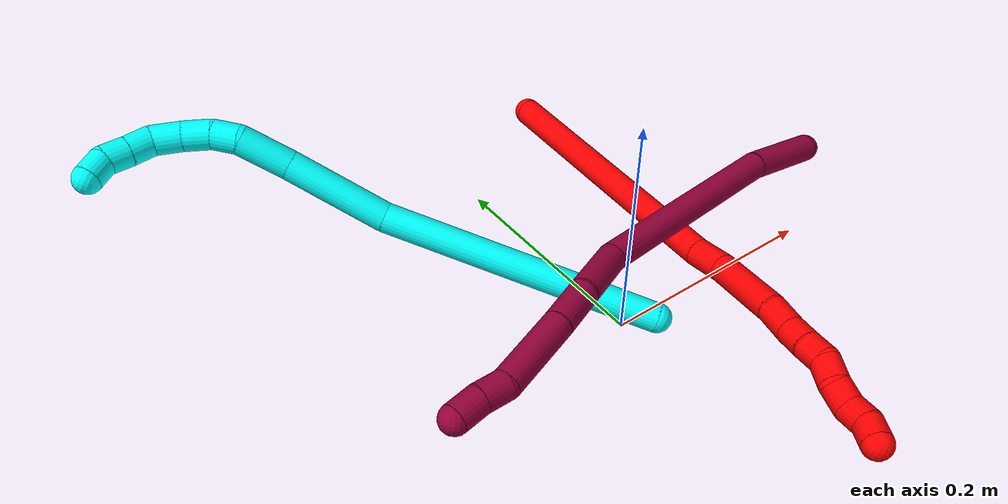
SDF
<sdf version="1.7">
 <world name="default">
  <model name="2">
   <static>0</static>
   <link name="2">
    <collision name="collision-cylinder-e_1_1_4">
     <pose>-0.024738 -0.073642 -0.098688 2.50052 -0.198258 -0.58214</pose>
     <geometry><cylinder><radius>0.0125</radius><length>0.251193</length></cylinder></geometry>
     <surface>
      <friction><ode><mu>1.16</mu><mu2>1.16</mu2><slip1>0</slip1><slip2>0</slip2></ode></friction>
      <contact><ode><kp>1e+06</kp><kd>1</kd><max_vel>0</max_vel><min_depth>0.001</min_depth></ode></contact>
     </surface>
    </collision>
    <visual name="visual-cylinder-e_1_1_4">
     <pose>-0.024738 -0.073642 -0.098688 2.50052 -0.198258 -0.58214</pose>
     <geometry><cylinder><radius>0.0125</radius><length>0.251193</length></cylinder></geometry>
     <material><ambient>1 0 0 1</ambient></material>
    </visual>
    <collision name="collision-cylinder-e_2_4_5">
     <pose>-0.050624 -0.157809 -0.208819 2.39795 -0.073718 -0.188564</pose>
     <geometry><cylinder><radius>0.0125</radius><length>0.031178</length></cylinder></geometry>
     <surface>
      <friction><ode><mu>1.16</mu><mu2>1.16</mu2><slip1>0</slip1><slip2>0</slip2></ode></friction>
      <contact><ode><kp>1e+06</kp><kd>1</kd><max_vel>0</max_vel><min_depth>0.001</min_depth></ode></contact>
     </surface>
    </collision>
    <visual name="visual-cylinder-e_2_4_5">
     <pose>-0.050624 -0.157809 -0.208819 2.39795 -0.073718 -0.188564</pose>
     <geometry><cylinder><radius>0.0125</radius><length>0.031178</length></cylinder></geometry>
     <material><ambient>1 0 0 1</ambient></material>
    </visual>
    <collision name="collision-cylinder-e_3_5_6">
     <pose>-0.056963 -0.19606 -0.241227 2.21824 -0.148247 -0.29632</pose>
     <geometry><cylinder><radius>0.0125</radius><length>0.070293</length></cylinder></geometry>
     <surface>
      <friction><ode><mu>1.16</mu><mu2>1.16</mu2><slip1>0</slip1><slip2>0</slip2></ode></friction>
      <contact><ode><kp>1e+06</kp><kd>1</kd><max_vel>0</max_vel><min_depth>0.001</min_depth></ode></contact>
     </surface>
    </collision>
    <visual name="visual-cylinder-e_3_5_6">
     <pose>-0.056963 -0.19606 -0.241227 2.21824 -0.148247 -0.29632</pose>
     <geometry><cylinder><radius>0.0125</radius><length>0.070293</length></cylinder></geometry>
     <material><ambient>1 0 0 1</ambient></material>
    </visual>
    <collision name="collision-cylinder-e_4_6_7">
     <pose>-0.066007 -0.233097 -0.270726 2.31264 -0.296072 -0.653595</pose>
     <geometry><cylinder><radius>0.0125</radius><length>0.026408</length></cylinder></geometry>
     <surface>
      <friction><ode><mu>1.16</mu><mu2>1.16</mu2><slip1>0</slip1><slip2>0</slip2></ode></friction>
      <contact><ode><kp>1e+06</kp><kd>1</kd><max_vel>0</max_vel><min_depth>0.001</min_depth></ode></contact>
     </surface>
    </collision>
    <visual name="visual-cylinder-e_4_6_7">
     <pose>-0.066007 -0.233097 -0.270726 2.31264 -0.296072 -0.653595</pose>
     <geometry><cylinder><radius>0.0125</radius><length>0.026408</length></cylinder></geometry>
     <material><ambient>1 0 0 1</ambient></material>
    </visual>
    <collision name="collision-cylinder-e_5_7_8">
     <pose>-0.072007 -0.250317 -0.285723 2.25597 -0.207259 -0.43179</pose>
     <geometry><cylinder><radius>0.0125</radius><length>0.020876</length></cylinder></geometry>
     <surface>
      <friction><ode><mu>1.16</mu><mu2>1.16</mu2><slip1>0</slip1><slip2>0</slip2></ode></friction>
      <contact><ode><kp>1e+06</kp><kd>1</kd><max_vel>0</max_vel><min_depth>0.001</min_depth></ode></contact>
     </surface>
    </collision>
    <visual name="visual-cylinder-e_5_7_8">
     <pose>-0.072007 -0.250317 -0.285723 2.25597 -0.207259 -0.43179</pose>
     <geometry><cylinder><radius>0.0125</radius><length>0.020876</length></cylinder></geometry>
     <material><ambient>1 0 0 1</ambient></material>
    </visual>
    <collision name="collision-cylinder-e_6_8_9">
     <pose>-0.076047 -0.265207 -0.299129 2.3534 -0.189829 -0.450102</pose>
     <geometry><cylinder><radius>0.0125</radius><length>0.02005</length></cylinder></geometry>
     <surface>
      <friction><ode><mu>1.16</mu><mu2>1.16</mu2><slip1>0</slip1><slip2>0</slip2></ode></friction>
      <contact><ode><kp>1e+06</kp><kd>1</kd><max_vel>0</max_vel><min_depth>0.001</min_depth></ode></contact>
     </surface>
    </collision>
    <visual name="visual-cylinder-e_6_8_9">
     <pose>-0.076047 -0.265207 -0.299129 2.3534 -0.189829 -0.450102</pose>
     <geometry><cylinder><radius>0.0125</radius><length>0.02005</length></cylinder></geometry>
     <material><ambient>1 0 0 1</ambient></material>
    </visual>
    <collision name="collision-cylinder-e_7_9_10">
     <pose>-0.083623 -0.278379 -0.31149 2.28982 -0.604622 -1.20452</pose>
     <geometry><cylinder><radius>0.0125</radius><length>0.02</length></cylinder></geometry>
     <surface>
      <friction><ode><mu>1.16</mu><mu2>1.16</mu2><slip1>0</slip1><slip2>0</slip2></ode></friction>
      <contact><ode><kp>1e+06</kp><kd>1</kd><max_vel>0</max_vel><min_depth>0.001</min_depth></ode></contact>
     </surface>
    </collision>
    <visual name="visual-cylinder-e_7_9_10">
     <pose>-0.083623 -0.278379 -0.31149 2.28982 -0.604622 -1.20452</pose>
     <geometry><cylinder><radius>0.0125</radius><length>0.02</length></cylinder></geometry>
     <material><ambient>1 0 0 1</ambient></material>
    </visual>
    <collision name="collision-cylinder-e_8_10_11">
     <pose>-0.094587 -0.288203 -0.324585 2.69953 -0.556147 -1.8079</pose>
     <geometry><cylinder><radius>0.0125</radius><length>0.02</length></cylinder></geometry>
     <surface>
      <friction><ode><mu>1.16</mu><mu2>1.16</mu2><slip1>0</slip1><slip2>0</slip2></ode></friction>
      <contact><ode><kp>1e+06</kp><kd>1</kd><max_vel>0</max_vel><min_depth>0.001</min_depth></ode></contact>
     </surface>
    </collision>
    <visual name="visual-cylinder-e_8_10_11">
     <pose>-0.094587 -0.288203 -0.324585 2.69953 -0.556147 -1.8079</pose>
     <geometry><cylinder><radius>0.0125</radius><length>0.02</length></cylinder></geometry>
     <material><ambient>1 0 0 1</ambient></material>
    </visual>
    <collision name="collision-cylinder-e_9_11_12">
     <pose>-0.101597 -0.299079 -0.338936 2.31534 -0.173984 -0.392779</pose>
     <geometry><cylinder><radius>0.0125</radius><length>0.020001</length></cylinder></geometry>
     <surface>
      <friction><ode><mu>1.16</mu><mu2>1.16</mu2><slip1>0</slip1><slip2>0</slip2></ode></friction>
      <contact><ode><kp>1e+06</kp><kd>1</kd><max_vel>0</max_vel><min_depth>0.001</min_depth></ode></contact>
     </surface>
    </collision>
    <visual name="visual-cylinder-e_9_11_12">
     <pose>-0.101597 -0.299079 -0.338936 2.31534 -0.173984 -0.392779</pose>
     <geometry><cylinder><radius>0.0125</radius><length>0.020001</length></cylinder></geometry>
     <material><ambient>1 0 0 1</ambient></material>
    </visual>
    <collision name="collision-cylinder-e_10_12_2">
     <pose>-0.107525 -0.314514 -0.349521 2.01616 -0.433088 -0.67119</pose>
     <geometry><cylinder><radius>0.0125</radius><length>0.02</length></cylinder></geometry>
     <surface>
      <friction><ode><mu>1.16</mu><mu2>1.16</mu2><slip1>0</slip1><slip2>0</slip2></ode></friction>
      <contact><ode><kp>1e+06</kp><kd>1</kd><max_vel>0</max_vel><min_depth>0.001</min_depth></ode></contact>
     </surface>
    </collision>
    <visual name="visual-cylinder-e_10_12_2">
     <pose>-0.107525 -0.314514 -0.349521 2.01616 -0.433088 -0.67119</pose>
     <geometry><cylinder><radius>0.0125</radius><length>0.02</length></cylinder></geometry>
     <material><ambient>1 0 0 1</ambient></material>
    </visual>
    <collision name="collision-sphere-2">
     <pose>-0.111722 -0.322706 -0.353431 0 -0 0</pose>
     <geometry><sphere><radius>0.0125</radius></sphere></geometry>
     <surface>
      <friction><ode><mu>1.16</mu><mu2>1.16</mu2><slip1>0</slip1><slip2>0</slip2></ode></friction>
      <contact><ode><kp>1e+06</kp><kd>1</kd><max_vel>0</max_vel><min_depth>0.001</min_depth></ode></contact>
     </surface>
    </collision>
    <visual name="visual-sphere-2">
     <pose>-0.111722 -0.322706 -0.353431 0 -0 0</pose>
     <geometry><sphere><radius>0.0125</radius></sphere></geometry>
     <material><ambient>1 0 0 1</ambient></material>
    </visual>
    <collision name="collision-sphere-12">
     <pose>-0.103328 -0.306323 -0.345611 0 -0 0</pose>
     <geometry><sphere><radius>0.0125</radius></sphere></geometry>
     <surface>
      <friction><ode><mu>1.16</mu><mu2>1.16</mu2><slip1>0</slip1><slip2>0</slip2></ode></friction>
      <contact><ode><kp>1e+06</kp><kd>1</kd><max_vel>0</max_vel><min_depth>0.001</min_depth></ode></contact>
     </surface>
    </collision>
    <visual name="visual-sphere-12">
     <pose>-0.103328 -0.306323 -0.345611 0 -0 0</pose>
     <geometry><sphere><radius>0.0125</radius></sphere></geometry>
     <material><ambient>1 0 0 1</ambient></material>
    </visual>
    <collision name="collision-sphere-11">
     <pose>-0.099866 -0.291836 -0.332262 0 -0 0</pose>
     <geometry><sphere><radius>0.0125</radius></sphere></geometry>
     <surface>
      <friction><ode><mu>1.16</mu><mu2>1.16</mu2><slip1>0</slip1><slip2>0</slip2></ode></friction>
      <contact><ode><kp>1e+06</kp><kd>1</kd><max_vel>0</max_vel><min_depth>0.001</min_depth></ode></contact>
     </surface>
    </collision>
    <visual name="visual-sphere-11">
     <pose>-0.099866 -0.291836 -0.332262 0 -0 0</pose>
     <geometry><sphere><radius>0.0125</radius></sphere></geometry>
     <material><ambient>1 0 0 1</ambient></material>
    </visual>
    <collision name="collision-sphere-10">
     <pose>-0.089308 -0.284569 -0.316909 0 -0 0</pose>
     <geometry><sphere><radius>0.0125</radius></sphere></geometry>
     <surface>
      <friction><ode><mu>1.16</mu><mu2>1.16</mu2><slip1>0</slip1><slip2>0</slip2></ode></friction>
      <contact><ode><kp>1e+06</kp><kd>1</kd><max_vel>0</max_vel><min_depth>0.001</min_depth></ode></contact>
     </surface>
    </collision>
    <visual name="visual-sphere-10">
     <pose>-0.089308 -0.284569 -0.316909 0 -0 0</pose>
     <geometry><sphere><radius>0.0125</radius></sphere></geometry>
     <material><ambient>1 0 0 1</ambient></material>
    </visual>
    <collision name="collision-sphere-9">
     <pose>-0.077938 -0.272188 -0.306071 0 -0 0</pose>
     <geometry><sphere><radius>0.0125</radius></sphere></geometry>
     <surface>
      <friction><ode><mu>1.16</mu><mu2>1.16</mu2><slip1>0</slip1><slip2>0</slip2></ode></friction>
      <contact><ode><kp>1e+06</kp><kd>1</kd><max_vel>0</max_vel><min_depth>0.001</min_depth></ode></contact>
     </surface>
    </collision>
    <visual name="visual-sphere-9">
     <pose>-0.077938 -0.272188 -0.306071 0 -0 0</pose>
     <geometry><sphere><radius>0.0125</radius></sphere></geometry>
     <material><ambient>1 0 0 1</ambient></material>
    </visual>
    <collision name="collision-sphere-4">
     <pose>-0.049475 -0.147284 -0.197376 0 -0 0</pose>
     <geometry><sphere><radius>0.0125</radius></sphere></geometry>
     <surface>
      <friction><ode><mu>1.16</mu><mu2>1.16</mu2><slip1>0</slip1><slip2>0</slip2></ode></friction>
      <contact><ode><kp>1e+06</kp><kd>1</kd><max_vel>0</max_vel><min_depth>0.001</min_depth></ode></contact>
     </surface>
    </collision>
    <visual name="visual-sphere-4">
     <pose>-0.049475 -0.147284 -0.197376 0 -0 0</pose>
     <geometry><sphere><radius>0.0125</radius></sphere></geometry>
     <material><ambient>1 0 0 1</ambient></material>
    </visual>
    <collision name="collision-sphere-1">
     <geometry><sphere><radius>0.0125</radius></sphere></geometry>
     <surface>
      <friction><ode><mu>1.16</mu><mu2>1.16</mu2><slip1>0</slip1><slip2>0</slip2></ode></friction>
      <contact><ode><kp>1e+06</kp><kd>1</kd><max_vel>0</max_vel><min_depth>0.001</min_depth></ode></contact>
     </surface>
    </collision>
    <visual name="visual-sphere-1">
     <geometry><sphere><radius>0.0125</radius></sphere></geometry>
     <material><ambient>1 0 0 1</ambient></material>
    </visual>
    <collision name="collision-sphere-8">
     <pose>-0.074155 -0.258226 -0.292187 0 -0 0</pose>
     <geometry><sphere><radius>0.0125</radius></sphere></geometry>
     <surface>
      <friction><ode><mu>1.16</mu><mu2>1.16</mu2><slip1>0</slip1><slip2>0</slip2></ode></friction>
      <contact><ode><kp>1e+06</kp><kd>1</kd><max_vel>0</max_vel><min_depth>0.001</min_depth></ode></contact>
     </surface>
    </collision>
    <visual name="visual-sphere-8">
     <pose>-0.074155 -0.258226 -0.292187 0 -0 0</pose>
     <geometry><sphere><radius>0.0125</radius></sphere></geometry>
     <material><ambient>1 0 0 1</ambient></material>
    </visual>
    <collision name="collision-sphere-5">
     <pose>-0.051772 -0.168334 -0.220261 0 -0 0</pose>
     <geometry><sphere><radius>0.0125</radius></sphere></geometry>
     <surface>
      <friction><ode><mu>1.16</mu><mu2>1.16</mu2><slip1>0</slip1><slip2>0</slip2></ode></friction>
      <contact><ode><kp>1e+06</kp><kd>1</kd><max_vel>0</max_vel><min_depth>0.001</min_depth></ode></contact>
     </surface>
    </collision>
    <visual name="visual-sphere-5">
     <pose>-0.051772 -0.168334 -0.220261 0 -0 0</pose>
     <geometry><sphere><radius>0.0125</radius></sphere></geometry>
     <material><ambient>1 0 0 1</ambient></material>
    </visual>
    <collision name="collision-sphere-6">
     <pose>-0.062154 -0.223786 -0.262193 0 -0 0</pose>
     <geometry><sphere><radius>0.0125</radius></sphere></geometry>
     <surface>
      <friction><ode><mu>1.16</mu><mu2>1.16</mu2><slip1>0</slip1><slip2>0</slip2></ode></friction>
      <contact><ode><kp>1e+06</kp><kd>1</kd><max_vel>0</max_vel><min_depth>0.001</min_depth></ode></contact>
     </surface>
    </collision>
    <visual name="visual-sphere-6">
     <pose>-0.062154 -0.223786 -0.262193 0 -0 0</pose>
     <geometry><sphere><radius>0.0125</radius></sphere></geometry>
     <material><ambient>1 0 0 1</ambient></material>
    </visual>
    <collision name="collision-sphere-7">
     <pose>-0.069859 -0.242408 -0.279259 0 -0 0</pose>
     <geometry><sphere><radius>0.0125</radius></sphere></geometry>
     <surface>
      <friction><ode><mu>1.16</mu><mu2>1.16</mu2><slip1>0</slip1><slip2>0</slip2></ode></friction>
      <contact><ode><kp>1e+06</kp><kd>1</kd><max_vel>0</max_vel><min_depth>0.001</min_depth></ode></contact>
     </surface>
    </collision>
    <visual name="visual-sphere-7">
     <pose>-0.069859 -0.242408 -0.279259 0 -0 0</pose>
     <geometry><sphere><radius>0.0125</radius></sphere></geometry>
     <material><ambient>1 0 0 1</ambient></material>
    </visual>
    <inertial>
     <pose>-0.048629 -0.155006 -0.18772 0 -0 0</pose>
     <mass>0.5</mass>
     <inertia>
      <ixx>0.000388</ixx>
      <ixy>0</ixy>
      <ixz>0</ixz>
      <iyy>-0.001586</iyy>
      <iyz>0</iyz>
      <izz>0.001059</izz>
     </inertia>
    </inertial>
   </link>
   <pose>0.112085 0.269203 0.011496 -1.16426 -0.836048 0.266186</pose>
  </model>
  <model name="3">
   <static>0</static>
   <link name="3">
    <collision name="collision-cylinder-e_1_1_4">
     <pose>-0.017079 0.0234 0.114469 -0.201642 -0.145154 0.01471</pose>
     <geometry><cylinder><radius>0.0125</radius><length>0.236157</length></cylinder></geometry>
     <surface>
      <friction><ode><mu>1.16</mu><mu2>1.16</mu2><slip1>0</slip1><slip2>0</slip2></ode></friction>
      <contact><ode><kp>1e+06</kp><kd>1</kd><max_vel>0</max_vel><min_depth>0.001</min_depth></ode></contact>
     </surface>
    </collision>
    <visual name="visual-cylinder-e_1_1_4">
     <pose>-0.017079 0.0234 0.114469 -0.201642 -0.145154 0.01471</pose>
     <geometry><cylinder><radius>0.0125</radius><length>0.236157</length></cylinder></geometry>
     <material><ambient>0.003922 1 0.996078 1</ambient></material>
    </visual>
    <collision name="collision-cylinder-e_2_4_5">
     <pose>-0.033424 0.051804 0.272352 -0.114777 0.016816 -0.000966</pose>
     <geometry><cylinder><radius>0.0125</radius><length>0.087413</length></cylinder></geometry>
     <surface>
      <friction><ode><mu>1.16</mu><mu2>1.16</mu2><slip1>0</slip1><slip2>0</slip2></ode></friction>
      <contact><ode><kp>1e+06</kp><kd>1</kd><max_vel>0</max_vel><min_depth>0.001</min_depth></ode></contact>
     </surface>
    </collision>
    <visual name="visual-cylinder-e_2_4_5">
     <pose>-0.033424 0.051804 0.272352 -0.114777 0.016816 -0.000966</pose>
     <geometry><cylinder><radius>0.0125</radius><length>0.087413</length></cylinder></geometry>
     <material><ambient>0.003922 1 0.996078 1</ambient></material>
    </visual>
    <collision name="collision-cylinder-e_3_5_6">
     <pose>-0.032742 0.057292 0.337802 -0.021902 -0.002407 2.6e-05</pose>
     <geometry><cylinder><radius>0.0125</radius><length>0.044086</length></cylinder></geometry>
     <surface>
      <friction><ode><mu>1.16</mu><mu2>1.16</mu2><slip1>0</slip1><slip2>0</slip2></ode></friction>
      <contact><ode><kp>1e+06</kp><kd>1</kd><max_vel>0</max_vel><min_depth>0.001</min_depth></ode></contact>
     </surface>
    </collision>
    <visual name="visual-cylinder-e_3_5_6">
     <pose>-0.032742 0.057292 0.337802 -0.021902 -0.002407 2.6e-05</pose>
     <geometry><cylinder><radius>0.0125</radius><length>0.044086</length></cylinder></geometry>
     <material><ambient>0.003922 1 0.996078 1</ambient></material>
    </visual>
    <collision name="collision-cylinder-e_4_6_7">
     <pose>-0.036109 0.059881 0.370119 -0.202131 -0.30588 0.031261</pose>
     <geometry><cylinder><radius>0.0125</radius><length>0.022007</length></cylinder></geometry>
     <surface>
      <friction><ode><mu>1.16</mu><mu2>1.16</mu2><slip1>0</slip1><slip2>0</slip2></ode></friction>
      <contact><ode><kp>1e+06</kp><kd>1</kd><max_vel>0</max_vel><min_depth>0.001</min_depth></ode></contact>
     </surface>
    </collision>
    <visual name="visual-cylinder-e_4_6_7">
     <pose>-0.036109 0.059881 0.370119 -0.202131 -0.30588 0.031261</pose>
     <geometry><cylinder><radius>0.0125</radius><length>0.022007</length></cylinder></geometry>
     <material><ambient>0.003922 1 0.996078 1</ambient></material>
    </visual>
    <collision name="collision-cylinder-e_5_7_8">
     <pose>-0.045673 0.063096 0.390332 -0.111113 -0.558869 0.031913</pose>
     <geometry><cylinder><radius>0.0125</radius><length>0.023579</length></cylinder></geometry>
     <surface>
      <friction><ode><mu>1.16</mu><mu2>1.16</mu2><slip1>0</slip1><slip2>0</slip2></ode></friction>
      <contact><ode><kp>1e+06</kp><kd>1</kd><max_vel>0</max_vel><min_depth>0.001</min_depth></ode></contact>
     </surface>
    </collision>
    <visual name="visual-cylinder-e_5_7_8">
     <pose>-0.045673 0.063096 0.390332 -0.111113 -0.558869 0.031913</pose>
     <geometry><cylinder><radius>0.0125</radius><length>0.023579</length></cylinder></geometry>
     <material><ambient>0.003922 1 0.996078 1</ambient></material>
    </visual>
    <collision name="collision-cylinder-e_6_8_9">
     <pose>-0.059135 0.063741 0.410355 0.045858 -0.620018 -0.014693</pose>
     <geometry><cylinder><radius>0.0125</radius><length>0.024818</length></cylinder></geometry>
     <surface>
      <friction><ode><mu>1.16</mu><mu2>1.16</mu2><slip1>0</slip1><slip2>0</slip2></ode></friction>
      <contact><ode><kp>1e+06</kp><kd>1</kd><max_vel>0</max_vel><min_depth>0.001</min_depth></ode></contact>
     </surface>
    </collision>
    <visual name="visual-cylinder-e_6_8_9">
     <pose>-0.059135 0.063741 0.410355 0.045858 -0.620018 -0.014693</pose>
     <geometry><cylinder><radius>0.0125</radius><length>0.024818</length></cylinder></geometry>
     <material><ambient>0.003922 1 0.996078 1</ambient></material>
    </visual>
    <collision name="collision-cylinder-e_7_9_10">
     <pose>-0.073759 0.058681 0.426473 0.651492 -0.774178 -0.273674</pose>
     <geometry><cylinder><radius>0.0125</radius><length>0.021209</length></cylinder></geometry>
     <surface>
      <friction><ode><mu>1.16</mu><mu2>1.16</mu2><slip1>0</slip1><slip2>0</slip2></ode></friction>
      <contact><ode><kp>1e+06</kp><kd>1</kd><max_vel>0</max_vel><min_depth>0.001</min_depth></ode></contact>
     </surface>
    </collision>
    <visual name="visual-cylinder-e_7_9_10">
     <pose>-0.073759 0.058681 0.426473 0.651492 -0.774178 -0.273674</pose>
     <geometry><cylinder><radius>0.0125</radius><length>0.021209</length></cylinder></geometry>
     <material><ambient>0.003922 1 0.996078 1</ambient></material>
    </visual>
    <collision name="collision-cylinder-e_8_10_11">
     <pose>-0.087808 0.049715 0.438685 0.615122 -0.719723 -0.237893</pose>
     <geometry><cylinder><radius>0.0125</radius><length>0.020134</length></cylinder></geometry>
     <surface>
      <friction><ode><mu>1.16</mu><mu2>1.16</mu2><slip1>0</slip1><slip2>0</slip2></ode></friction>
      <contact><ode><kp>1e+06</kp><kd>1</kd><max_vel>0</max_vel><min_depth>0.001</min_depth></ode></contact>
     </surface>
    </collision>
    <visual name="visual-cylinder-e_8_10_11">
     <pose>-0.087808 0.049715 0.438685 0.615122 -0.719723 -0.237893</pose>
     <geometry><cylinder><radius>0.0125</radius><length>0.020134</length></cylinder></geometry>
     <material><ambient>0.003922 1 0.996078 1</ambient></material>
    </visual>
    <collision name="collision-cylinder-e_9_11_2">
     <pose>-0.10205 0.038608 0.44654 1.32746 -0.830912 -0.664445</pose>
     <geometry><cylinder><radius>0.0125</radius><length>0.020597</length></cylinder></geometry>
     <surface>
      <friction><ode><mu>1.16</mu><mu2>1.16</mu2><slip1>0</slip1><slip2>0</slip2></ode></friction>
      <contact><ode><kp>1e+06</kp><kd>1</kd><max_vel>0</max_vel><min_depth>0.001</min_depth></ode></contact>
     </surface>
    </collision>
    <visual name="visual-cylinder-e_9_11_2">
     <pose>-0.10205 0.038608 0.44654 1.32746 -0.830912 -0.664445</pose>
     <geometry><cylinder><radius>0.0125</radius><length>0.020597</length></cylinder></geometry>
     <material><ambient>0.003922 1 0.996078 1</ambient></material>
    </visual>
    <collision name="collision-sphere-2">
     <pose>-0.109657 0.031869 0.448213 0 -0 0</pose>
     <geometry><sphere><radius>0.0125</radius></sphere></geometry>
     <surface>
      <friction><ode><mu>1.16</mu><mu2>1.16</mu2><slip1>0</slip1><slip2>0</slip2></ode></friction>
      <contact><ode><kp>1e+06</kp><kd>1</kd><max_vel>0</max_vel><min_depth>0.001</min_depth></ode></contact>
     </surface>
    </collision>
    <visual name="visual-sphere-2">
     <pose>-0.109657 0.031869 0.448213 0 -0 0</pose>
     <geometry><sphere><radius>0.0125</radius></sphere></geometry>
     <material><ambient>0.003922 1 0.996078 1</ambient></material>
    </visual>
    <collision name="collision-sphere-11">
     <pose>-0.094444 0.045346 0.444867 0 -0 0</pose>
     <geometry><sphere><radius>0.0125</radius></sphere></geometry>
     <surface>
      <friction><ode><mu>1.16</mu><mu2>1.16</mu2><slip1>0</slip1><slip2>0</slip2></ode></friction>
      <contact><ode><kp>1e+06</kp><kd>1</kd><max_vel>0</max_vel><min_depth>0.001</min_depth></ode></contact>
     </surface>
    </collision>
    <visual name="visual-sphere-11">
     <pose>-0.094444 0.045346 0.444867 0 -0 0</pose>
     <geometry><sphere><radius>0.0125</radius></sphere></geometry>
     <material><ambient>0.003922 1 0.996078 1</ambient></material>
    </visual>
    <collision name="collision-sphere-10">
     <pose>-0.081172 0.054083 0.432502 0 -0 0</pose>
     <geometry><sphere><radius>0.0125</radius></sphere></geometry>
     <surface>
      <friction><ode><mu>1.16</mu><mu2>1.16</mu2><slip1>0</slip1><slip2>0</slip2></ode></friction>
      <contact><ode><kp>1e+06</kp><kd>1</kd><max_vel>0</max_vel><min_depth>0.001</min_depth></ode></contact>
     </surface>
    </collision>
    <visual name="visual-sphere-10">
     <pose>-0.081172 0.054083 0.432502 0 -0 0</pose>
     <geometry><sphere><radius>0.0125</radius></sphere></geometry>
     <material><ambient>0.003922 1 0.996078 1</ambient></material>
    </visual>
    <collision name="collision-sphere-9">
     <pose>-0.066345 0.063278 0.420444 0 -0 0</pose>
     <geometry><sphere><radius>0.0125</radius></sphere></geometry>
     <surface>
      <friction><ode><mu>1.16</mu><mu2>1.16</mu2><slip1>0</slip1><slip2>0</slip2></ode></friction>
      <contact><ode><kp>1e+06</kp><kd>1</kd><max_vel>0</max_vel><min_depth>0.001</min_depth></ode></contact>
     </surface>
    </collision>
    <visual name="visual-sphere-9">
     <pose>-0.066345 0.063278 0.420444 0 -0 0</pose>
     <geometry><sphere><radius>0.0125</radius></sphere></geometry>
     <material><ambient>0.003922 1 0.996078 1</ambient></material>
    </visual>
    <collision name="collision-sphere-4">
     <pose>-0.034159 0.0468 0.228939 0 -0 0</pose>
     <geometry><sphere><radius>0.0125</radius></sphere></geometry>
     <surface>
      <friction><ode><mu>1.16</mu><mu2>1.16</mu2><slip1>0</slip1><slip2>0</slip2></ode></friction>
      <contact><ode><kp>1e+06</kp><kd>1</kd><max_vel>0</max_vel><min_depth>0.001</min_depth></ode></contact>
     </surface>
    </collision>
    <visual name="visual-sphere-4">
     <pose>-0.034159 0.0468 0.228939 0 -0 0</pose>
     <geometry><sphere><radius>0.0125</radius></sphere></geometry>
     <material><ambient>0.003922 1 0.996078 1</ambient></material>
    </visual>
    <collision name="collision-sphere-1">
     <geometry><sphere><radius>0.0125</radius></sphere></geometry>
     <surface>
      <friction><ode><mu>1.16</mu><mu2>1.16</mu2><slip1>0</slip1><slip2>0</slip2></ode></friction>
      <contact><ode><kp>1e+06</kp><kd>1</kd><max_vel>0</max_vel><min_depth>0.001</min_depth></ode></contact>
     </surface>
    </collision>
    <visual name="visual-sphere-1">
     <geometry><sphere><radius>0.0125</radius></sphere></geometry>
     <material><ambient>0.003922 1 0.996078 1</ambient></material>
    </visual>
    <collision name="collision-sphere-8">
     <pose>-0.051924 0.064204 0.400266 0 -0 0</pose>
     <geometry><sphere><radius>0.0125</radius></sphere></geometry>
     <surface>
      <friction><ode><mu>1.16</mu><mu2>1.16</mu2><slip1>0</slip1><slip2>0</slip2></ode></friction>
      <contact><ode><kp>1e+06</kp><kd>1</kd><max_vel>0</max_vel><min_depth>0.001</min_depth></ode></contact>
     </surface>
    </collision>
    <visual name="visual-sphere-8">
     <pose>-0.051924 0.064204 0.400266 0 -0 0</pose>
     <geometry><sphere><radius>0.0125</radius></sphere></geometry>
     <material><ambient>0.003922 1 0.996078 1</ambient></material>
    </visual>
    <collision name="collision-sphere-5">
     <pose>-0.032689 0.056809 0.315764 0 -0 0</pose>
     <geometry><sphere><radius>0.0125</radius></sphere></geometry>
     <surface>
      <friction><ode><mu>1.16</mu><mu2>1.16</mu2><slip1>0</slip1><slip2>0</slip2></ode></friction>
      <contact><ode><kp>1e+06</kp><kd>1</kd><max_vel>0</max_vel><min_depth>0.001</min_depth></ode></contact>
     </surface>
    </collision>
    <visual name="visual-sphere-5">
     <pose>-0.032689 0.056809 0.315764 0 -0 0</pose>
     <geometry><sphere><radius>0.0125</radius></sphere></geometry>
     <material><ambient>0.003922 1 0.996078 1</ambient></material>
    </visual>
    <collision name="collision-sphere-6">
     <pose>-0.032795 0.057775 0.35984 0 -0 0</pose>
     <geometry><sphere><radius>0.0125</radius></sphere></geometry>
     <surface>
      <friction><ode><mu>1.16</mu><mu2>1.16</mu2><slip1>0</slip1><slip2>0</slip2></ode></friction>
      <contact><ode><kp>1e+06</kp><kd>1</kd><max_vel>0</max_vel><min_depth>0.001</min_depth></ode></contact>
     </surface>
    </collision>
    <visual name="visual-sphere-6">
     <pose>-0.032795 0.057775 0.35984 0 -0 0</pose>
     <geometry><sphere><radius>0.0125</radius></sphere></geometry>
     <material><ambient>0.003922 1 0.996078 1</ambient></material>
    </visual>
    <collision name="collision-sphere-7">
     <pose>-0.039422 0.061988 0.380398 0 -0 0</pose>
     <geometry><sphere><radius>0.0125</radius></sphere></geometry>
     <surface>
      <friction><ode><mu>1.16</mu><mu2>1.16</mu2><slip1>0</slip1><slip2>0</slip2></ode></friction>
      <contact><ode><kp>1e+06</kp><kd>1</kd><max_vel>0</max_vel><min_depth>0.001</min_depth></ode></contact>
     </surface>
    </collision>
    <visual name="visual-sphere-7">
     <pose>-0.039422 0.061988 0.380398 0 -0 0</pose>
     <geometry><sphere><radius>0.0125</radius></sphere></geometry>
     <material><ambient>0.003922 1 0.996078 1</ambient></material>
    </visual>
    <inertial>
     <pose>-0.034344 0.040017 0.24068 0 -0 0</pose>
     <mass>0.5</mass>
     <inertia>
      <ixx>0.001177</ixx>
      <ixy>0</ixy>
      <ixz>0</ixz>
      <iyy>0.001179</iyy>
      <iyz>0</iyz>
      <izz>-2.4e-05</izz>
     </inertia>
    </inertial>
   </link>
   <pose>0.021903 -0.017644 0.010791 -0.808085 -0.822945 0.165685</pose>
  </model>
  <model name="8">
   <static>0</static>
   <link name="8">
    <collision name="collision-cylinder-e_1_1_4">
     <pose>-0.008848 0.010465 -0.036024 -2.85888 -0.231631 1.37065</pose>
     <geometry><cylinder><radius>0.0125</radius><length>0.077085</length></cylinder></geometry>
     <surface>
      <friction><ode><mu>1.16</mu><mu2>1.16</mu2><slip1>0</slip1><slip2>0</slip2></ode></friction>
      <contact><ode><kp>1e+06</kp><kd>1</kd><max_vel>0</max_vel><min_depth>0.001</min_depth></ode></contact>
     </surface>
    </collision>
    <visual name="visual-cylinder-e_1_1_4">
     <pose>-0.008848 0.010465 -0.036024 -2.85888 -0.231631 1.37065</pose>
     <geometry><cylinder><radius>0.0125</radius><length>0.077085</length></cylinder></geometry>
     <material><ambient>0.584314 0 0.227451 1</ambient></material>
    </visual>
    <collision name="collision-cylinder-e_2_4_5">
     <pose>-0.056144 0.049111 -0.161377 -2.836 -0.389498 1.81584</pose>
     <geometry><cylinder><radius>0.0125</radius><length>0.202505</length></cylinder></geometry>
     <surface>
      <friction><ode><mu>1.16</mu><mu2>1.16</mu2><slip1>0</slip1><slip2>0</slip2></ode></friction>
      <contact><ode><kp>1e+06</kp><kd>1</kd><max_vel>0</max_vel><min_depth>0.001</min_depth></ode></contact>
     </surface>
    </collision>
    <visual name="visual-cylinder-e_2_4_5">
     <pose>-0.056144 0.049111 -0.161377 -2.836 -0.389498 1.81584</pose>
     <geometry><cylinder><radius>0.0125</radius><length>0.202505</length></cylinder></geometry>
     <material><ambient>0.584314 0 0.227451 1</ambient></material>
    </visual>
    <collision name="collision-cylinder-e_3_5_6">
     <pose>-0.10701 0.093999 -0.272367 -2.4846 -0.426118 1.13111</pose>
     <geometry><cylinder><radius>0.0125</radius><length>0.060084</length></cylinder></geometry>
     <surface>
      <friction><ode><mu>1.16</mu><mu2>1.16</mu2><slip1>0</slip1><slip2>0</slip2></ode></friction>
      <contact><ode><kp>1e+06</kp><kd>1</kd><max_vel>0</max_vel><min_depth>0.001</min_depth></ode></contact>
     </surface>
    </collision>
    <visual name="visual-cylinder-e_3_5_6">
     <pose>-0.10701 0.093999 -0.272367 -2.4846 -0.426118 1.13111</pose>
     <geometry><cylinder><radius>0.0125</radius><length>0.060084</length></cylinder></geometry>
     <material><ambient>0.584314 0 0.227451 1</ambient></material>
    </visual>
    <collision name="collision-cylinder-e_4_6_7">
     <pose>-0.130345 0.119892 -0.309759 -2.61309 -0.539917 1.59321</pose>
     <geometry><cylinder><radius>0.0125</radius><length>0.042475</length></cylinder></geometry>
     <surface>
      <friction><ode><mu>1.16</mu><mu2>1.16</mu2><slip1>0</slip1><slip2>0</slip2></ode></friction>
      <contact><ode><kp>1e+06</kp><kd>1</kd><max_vel>0</max_vel><min_depth>0.001</min_depth></ode></contact>
     </surface>
    </collision>
    <visual name="visual-cylinder-e_4_6_7">
     <pose>-0.130345 0.119892 -0.309759 -2.61309 -0.539917 1.59321</pose>
     <geometry><cylinder><radius>0.0125</radius><length>0.042475</length></cylinder></geometry>
     <material><ambient>0.584314 0 0.227451 1</ambient></material>
    </visual>
    <collision name="collision-cylinder-e_5_7_8">
     <pose>-0.160477 0.140618 -0.352187 -2.73359 -0.583818 1.9357</pose>
     <geometry><cylinder><radius>0.0125</radius><length>0.069716</length></cylinder></geometry>
     <surface>
      <friction><ode><mu>1.16</mu><mu2>1.16</mu2><slip1>0</slip1><slip2>0</slip2></ode></friction>
      <contact><ode><kp>1e+06</kp><kd>1</kd><max_vel>0</max_vel><min_depth>0.001</min_depth></ode></contact>
     </surface>
    </collision>
    <visual name="visual-cylinder-e_5_7_8">
     <pose>-0.160477 0.140618 -0.352187 -2.73359 -0.583818 1.9357</pose>
     <geometry><cylinder><radius>0.0125</radius><length>0.069716</length></cylinder></geometry>
     <material><ambient>0.584314 0 0.227451 1</ambient></material>
    </visual>
    <collision name="collision-cylinder-e_6_8_9">
     <pose>-0.184003 0.153698 -0.389905 -3.00276 -0.369676 2.42956</pose>
     <geometry><cylinder><radius>0.0125</radius><length>0.023867</length></cylinder></geometry>
     <surface>
      <friction><ode><mu>1.16</mu><mu2>1.16</mu2><slip1>0</slip1><slip2>0</slip2></ode></friction>
      <contact><ode><kp>1e+06</kp><kd>1</kd><max_vel>0</max_vel><min_depth>0.001</min_depth></ode></contact>
     </surface>
    </collision>
    <visual name="visual-cylinder-e_6_8_9">
     <pose>-0.184003 0.153698 -0.389905 -3.00276 -0.369676 2.42956</pose>
     <geometry><cylinder><radius>0.0125</radius><length>0.023867</length></cylinder></geometry>
     <material><ambient>0.584314 0 0.227451 1</ambient></material>
    </visual>
    <collision name="collision-cylinder-e_7_9_2">
     <pose>-0.194149 0.157489 -0.411323 -2.92832 -0.501629 2.35008</pose>
     <geometry><cylinder><radius>0.0125</radius><length>0.024266</length></cylinder></geometry>
     <surface>
      <friction><ode><mu>1.16</mu><mu2>1.16</mu2><slip1>0</slip1><slip2>0</slip2></ode></friction>
      <contact><ode><kp>1e+06</kp><kd>1</kd><max_vel>0</max_vel><min_depth>0.001</min_depth></ode></contact>
     </surface>
    </collision>
    <visual name="visual-cylinder-e_7_9_2">
     <pose>-0.194149 0.157489 -0.411323 -2.92832 -0.501629 2.35008</pose>
     <geometry><cylinder><radius>0.0125</radius><length>0.024266</length></cylinder></geometry>
     <material><ambient>0.584314 0 0.227451 1</ambient></material>
    </visual>
    <collision name="collision-sphere-2">
     <pose>-0.199983 0.159741 -0.42172 0 -0 0</pose>
     <geometry><sphere><radius>0.0125</radius></sphere></geometry>
     <surface>
      <friction><ode><mu>1.16</mu><mu2>1.16</mu2><slip1>0</slip1><slip2>0</slip2></ode></friction>
      <contact><ode><kp>1e+06</kp><kd>1</kd><max_vel>0</max_vel><min_depth>0.001</min_depth></ode></contact>
     </surface>
    </collision>
    <visual name="visual-sphere-2">
     <pose>-0.199983 0.159741 -0.42172 0 -0 0</pose>
     <geometry><sphere><radius>0.0125</radius></sphere></geometry>
     <material><ambient>0.584314 0 0.227451 1</ambient></material>
    </visual>
    <collision name="collision-sphere-9">
     <pose>-0.188315 0.155238 -0.400925 0 -0 0</pose>
     <geometry><sphere><radius>0.0125</radius></sphere></geometry>
     <surface>
      <friction><ode><mu>1.16</mu><mu2>1.16</mu2><slip1>0</slip1><slip2>0</slip2></ode></friction>
      <contact><ode><kp>1e+06</kp><kd>1</kd><max_vel>0</max_vel><min_depth>0.001</min_depth></ode></contact>
     </surface>
    </collision>
    <visual name="visual-sphere-9">
     <pose>-0.188315 0.155238 -0.400925 0 -0 0</pose>
     <geometry><sphere><radius>0.0125</radius></sphere></geometry>
     <material><ambient>0.584314 0 0.227451 1</ambient></material>
    </visual>
    <collision name="collision-sphere-4">
     <pose>-0.017696 0.02093 -0.072048 0 -0 0</pose>
     <geometry><sphere><radius>0.0125</radius></sphere></geometry>
     <surface>
      <friction><ode><mu>1.16</mu><mu2>1.16</mu2><slip1>0</slip1><slip2>0</slip2></ode></friction>
      <contact><ode><kp>1e+06</kp><kd>1</kd><max_vel>0</max_vel><min_depth>0.001</min_depth></ode></contact>
     </surface>
    </collision>
    <visual name="visual-sphere-4">
     <pose>-0.017696 0.02093 -0.072048 0 -0 0</pose>
     <geometry><sphere><radius>0.0125</radius></sphere></geometry>
     <material><ambient>0.584314 0 0.227451 1</ambient></material>
    </visual>
    <collision name="collision-sphere-1">
     <geometry><sphere><radius>0.0125</radius></sphere></geometry>
     <surface>
      <friction><ode><mu>1.16</mu><mu2>1.16</mu2><slip1>0</slip1><slip2>0</slip2></ode></friction>
      <contact><ode><kp>1e+06</kp><kd>1</kd><max_vel>0</max_vel><min_depth>0.001</min_depth></ode></contact>
     </surface>
    </collision>
    <visual name="visual-sphere-1">
     <geometry><sphere><radius>0.0125</radius></sphere></geometry>
     <material><ambient>0.584314 0 0.227451 1</ambient></material>
    </visual>
    <collision name="collision-sphere-8">
     <pose>-0.179691 0.152158 -0.378884 0 -0 0</pose>
     <geometry><sphere><radius>0.0125</radius></sphere></geometry>
     <surface>
      <friction><ode><mu>1.16</mu><mu2>1.16</mu2><slip1>0</slip1><slip2>0</slip2></ode></friction>
      <contact><ode><kp>1e+06</kp><kd>1</kd><max_vel>0</max_vel><min_depth>0.001</min_depth></ode></contact>
     </surface>
    </collision>
    <visual name="visual-sphere-8">
     <pose>-0.179691 0.152158 -0.378884 0 -0 0</pose>
     <geometry><sphere><radius>0.0125</radius></sphere></geometry>
     <material><ambient>0.584314 0 0.227451 1</ambient></material>
    </visual>
    <collision name="collision-sphere-5">
     <pose>-0.094592 0.077292 -0.250706 0 -0 0</pose>
     <geometry><sphere><radius>0.0125</radius></sphere></geometry>
     <surface>
      <friction><ode><mu>1.16</mu><mu2>1.16</mu2><slip1>0</slip1><slip2>0</slip2></ode></friction>
      <contact><ode><kp>1e+06</kp><kd>1</kd><max_vel>0</max_vel><min_depth>0.001</min_depth></ode></contact>
     </surface>
    </collision>
    <visual name="visual-sphere-5">
     <pose>-0.094592 0.077292 -0.250706 0 -0 0</pose>
     <geometry><sphere><radius>0.0125</radius></sphere></geometry>
     <material><ambient>0.584314 0 0.227451 1</ambient></material>
    </visual>
    <collision name="collision-sphere-6">
     <pose>-0.119427 0.110707 -0.294028 0 -0 0</pose>
     <geometry><sphere><radius>0.0125</radius></sphere></geometry>
     <surface>
      <friction><ode><mu>1.16</mu><mu2>1.16</mu2><slip1>0</slip1><slip2>0</slip2></ode></friction>
      <contact><ode><kp>1e+06</kp><kd>1</kd><max_vel>0</max_vel><min_depth>0.001</min_depth></ode></contact>
     </surface>
    </collision>
    <visual name="visual-sphere-6">
     <pose>-0.119427 0.110707 -0.294028 0 -0 0</pose>
     <geometry><sphere><radius>0.0125</radius></sphere></geometry>
     <material><ambient>0.584314 0 0.227451 1</ambient></material>
    </visual>
    <collision name="collision-sphere-7">
     <pose>-0.141263 0.129078 -0.32549 0 -0 0</pose>
     <geometry><sphere><radius>0.0125</radius></sphere></geometry>
     <surface>
      <friction><ode><mu>1.16</mu><mu2>1.16</mu2><slip1>0</slip1><slip2>0</slip2></ode></friction>
      <contact><ode><kp>1e+06</kp><kd>1</kd><max_vel>0</max_vel><min_depth>0.001</min_depth></ode></contact>
     </surface>
    </collision>
    <visual name="visual-sphere-7">
     <pose>-0.141263 0.129078 -0.32549 0 -0 0</pose>
     <geometry><sphere><radius>0.0125</radius></sphere></geometry>
     <material><ambient>0.584314 0 0.227451 1</ambient></material>
    </visual>
    <inertial>
     <pose>-0.088617 0.077571 -0.217638 0 -0 0</pose>
     <mass>0.5</mass>
     <inertia>
      <ixx>0.000549</ixx>
      <ixy>0</ixy>
      <ixz>0</ixz>
      <iyy>0.000984</iyy>
      <iyz>0</iyz>
      <izz>4.2e-05</izz>
     </inertia>
    </inertial>
   </link>
   <pose>0.288757 0.066575 0.011437 1.92453 -0.854051 0.976484</pose>
  </model>
 </world>
</sdf>
